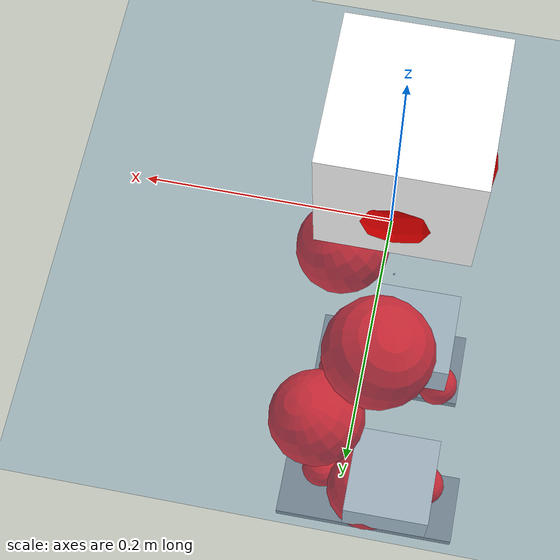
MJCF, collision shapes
<mujoco model="pi_12dof_release_v1">
  <compiler angle="radian" assetdir="assets" balanceinertia="true" inertiafromgeom="false"/>

  <option timestep="0.005" density="1.2" viscosity="2e-05"/>

  <size nkey="1"/>

  <visual>
    <quality shadowsize="8192"/>
    <map shadowclip="0.5"/>
  </visual>

  <default>
    <default class="/">
      <joint armature="0.01" damping="0.01" frictionloss="0.01"/>
      <geom contype="0" conaffinity="0" group="1" solref="-1000 -80"/>
      <site size="0.01 0.005 0.005" group="5"/>
      <general forcelimited="true" biastype="affine" gainprm="20" biasprm="0 -20 -0.5"/>
      <default class="foot">
        <geom size="0.0845 0.036 0.005" type="box" condim="6" group="4" priority="1" friction="0.9 0.2 0.2" solimp="0.015 1 0.005"/>
      </default>
      <default class="reward_collision_sphere">
        <geom group="5" rgba="1 0 0 1"/>
      </default>
    </default>
  </default>

  <asset>
    <texture type="skybox" colorspace="auto" name="//unnamed_texture_0" builtin="gradient" rgb1="0.95 0.95 0.95" rgb2="0.95 0.95 0.95" width="100" height="600"/>
    <texture type="2d" colorspace="auto" name="texplane" builtin="checker" rgb1="0.345 0.575 0.748" rgb2="0.345 0.575 0.748" markrgb="1 1 1" width="512" height="512"/>
    <material name="MatPlane" class="/" texture="texplane" texuniform="true" texrepeat="2 2" specular="0.9"/>
    <mesh name="baselink_1" class="/" file="baselink_1.STL"/>
    <mesh name="r_hip_pitch_link" class="/" file="r_hip_pitch_link.STL"/>
    <mesh name="r_hip_roll_link" class="/" file="r_hip_roll_link.STL"/>
    <mesh name="r_thigh_link" class="/" file="r_thigh_link.STL"/>
    <mesh name="r_calf_link" class="/" file="r_calf_link.STL"/>
    <mesh name="r_ankle_pitch_link" class="/" file="r_ankle_pitch_link.STL"/>
    <mesh name="r_ankle_roll_link" class="/" file="r_ankle_roll_link.STL"/>
    <mesh name="l_hip_pitch_link" class="/" file="l_hip_pitch_link.STL"/>
    <mesh name="l_hip_roll_link" class="/" file="l_hip_roll_link.STL"/>
    <mesh name="l_thigh_link" class="/" file="l_thigh_link.STL"/>
    <mesh name="l_calf_link" class="/" file="l_calf_link.STL"/>
    <mesh name="l_ankle_pitch_link" class="/" file="l_ankle_pitch_link.STL"/>
    <mesh name="l_ankle_roll_link" class="/" file="l_ankle_roll_link.STL"/>
  </asset>

  <worldbody>
    <geom name="floor" class="/" size="100 100 0.125" type="plane" group="0" material="MatPlane"/>
    <light name="toplight_shadow" class="/" pos="0 0 5" dir="0.0990148 0.0990148 -0.990148" type="directional" ambient="0.04 0.04 0.04" diffuse="0.55 0.55 0.55" specular="0.12 0.12 0.12"/>
    <light name="toplight_fill" class="/" pos="0 0 5" dir="0.0990148 0.0990148 -0.990148" type="directional" castshadow="false" ambient="0.04 0.04 0.04" diffuse="0.3 0.3 0.3" specular="0.08 0.08 0.08"/>
    <body name="trunk" pos="-0.00701481 -0.00183331 9.1574e-05" quat="0.999996 -0.00220072 0.00134604 0.00113003">
      <inertial pos="0.00845381 -0.000125079 0.0601674" quat="0.688489 0.00334005 0.0115555 0.725147" mass="3.92181" diaginertia="0.00492025 0.0168661 0.0371628"/>
      <joint name="//unnamed_joint_0" type="free"/>
      <geom name="//unnamed_geom_1" class="/" type="mesh" density="0" rgba="1 1 1 1" mesh="baselink_1"/>
      <geom name="//unnamed_geom_2" class="/" size="0.059117 0.059117 0.059117" pos="0 0 0.123487" type="box" rgba="1 1 1 1"/>
      <geom name="//unnamed_geom_3" class="reward_collision_sphere" size="0.0650287" pos="0 0 0.108051"/>
      <site name="imu" class="/" pos="-0.00995332 -0.00419436 -0.0260667" size="0.0118234"/>
      <camera name="track" class="/" pos="0 -2.26616 0" quat="0.707107 0.707107 0 0" mode="trackcom"/>
      <camera name="ego_camera" class="/" pos="0.065276 0 0.277846" quat="-0.5 -0.5 0.5 0.5"/>
      <body name="r_hip_pitch_link" pos="0.00160157 -0.0274696 -0.0503317" quat="0.992198 1.07279e-05 -0.124673 -1.50171e-05">
        <inertial pos="0.00319451 -0.059926 -0.00169267" quat="-0.0296077 0.707184 -0.0272772 0.705883" mass="0.628705" diaginertia="5.07279e-05 0.000186776 0.000726576"/>
        <joint name="r_hip_pitch_joint" class="/" pos="0 0 0" axis="0.000926497 -0.999999 -0.000412565" range="-1.74163 1.29213" armature="0.0109963" damping="0" frictionloss="0.0100797"/>
        <geom name="//unnamed_geom_4" class="/" type="mesh" density="0" rgba="0.75294 0.75294 0.75294 1" mesh="r_hip_pitch_link"/>
        <geom name="//unnamed_geom_5" class="/" size="0.00059117 0.00059117 0.00059117" type="box" rgba="0.75294 0.75294 0.75294 1"/>
        <body name="r_hip_roll_link" pos="-0.000160299 -0.0608038 -0.00105968" quat="0.999998 0.00077918 0.00183964 0.000910283">
          <inertial pos="-0.00406441 0.00214907 -0.0884883" quat="0.705753 -0.0798791 -0.0833424 0.69899" mass="0.651096" diaginertia="0.000172192 0.000550553 0.00105739"/>
          <joint name="r_hip_roll_joint" class="/" pos="0 0 0" axis="-0.99989 -0.0145221 0.00287176" stiffness="0.0118328" range="-0.153847 0.551186" armature="0.0114225" damping="0.033928" frictionloss="0.00940074"/>
          <geom name="//unnamed_geom_6" class="/" type="mesh" density="0" rgba="0.75294 0.75294 0.75294 1" mesh="r_hip_roll_link"/>
          <geom name="//unnamed_geom_7" class="/" size="0.00059117 0.00059117 0.00059117" type="box" rgba="0.75294 0.75294 0.75294 1"/>
          <geom name="//unnamed_geom_8" class="reward_collision_sphere" size="0.0472936"/>
          <body name="r_thigh_link" pos="0.00299157 0.00566838 -0.105499" quat="1 -0.000526799 -0.000609527 -0.000156801">
            <inertial pos="0.00397007 0.00166873 -0.0755564" quat="0.735488 0.677533 -0.00227986 -0.00121422" mass="0.184245" diaginertia="5.75927e-05 0.000156835 0.000469968"/>
            <joint name="r_thigh_joint" class="/" pos="0 0 0" axis="0.0024702 -0.00175756 -0.999995" stiffness="0.00519469" range="-0.229672 0.565783" armature="0.012468" damping="0.0140682" frictionloss="0.0160155"/>
            <geom name="//unnamed_geom_9" class="/" type="mesh" density="0" rgba="0.75294 0.75294 0.75294 1" mesh="r_thigh_link"/>
            <geom name="//unnamed_geom_10" class="/" size="0.00059117 0.00059117 0.00059117" type="box" rgba="0.75294 0.75294 0.75294 1"/>
            <body name="r_calf_link" pos="0.00310607 -0.00112618 -0.102658" quat="0.947511 7.31067e-05 0.31972 0.00162747">
              <inertial pos="-0.000974082 0.00353903 -0.107467" quat="0.999713 -0.0214691 0.00963094 0.00450932" mass="1.36467" diaginertia="0.00184924 0.00663922 0.00158562"/>
              <joint name="r_calf_joint" class="/" pos="0 0 0" axis="-0.021184 -0.99975 -0.00708715" stiffness="0.0221321" range="-1.78073 0.605159" armature="0.0104971" damping="0.020021" frictionloss="0.00994174"/>
              <geom name="//unnamed_geom_11" class="/" type="mesh" density="0" rgba="0.75294 0.75294 0.75294 1" mesh="r_calf_link"/>
              <geom name="//unnamed_geom_12" class="/" size="0.00059117 0.00059117 0.00059117" type="box" rgba="0.75294 0.75294 0.75294 1"/>
              <geom name="//unnamed_geom_13" class="reward_collision_sphere" size="0.0472936"/>
              <body name="r_ankle_pitch_link" pos="-0.0010789 0.00693679 -0.215345" quat="0.979995 -0.000427331 -0.199021 -0.000330686">
                <inertial pos="0.00311328 0.00717267 -0.00236531" quat="0.00156281 0.711169 -0.0100846 0.702947" mass="0.285585" diaginertia="0.000150062 0.000408323 0.000998674"/>
                <joint name="r_ankle_pitch_joint" class="/" pos="0 0 0" axis="-0.0227529 -0.999578 -0.0180482" range="-1.29613 0.515783" armature="0.0127907" damping="0.0175345" frictionloss="0.0111888"/>
                <geom name="//unnamed_geom_14" class="/" type="mesh" density="0" rgba="0.75294 0.75294 0.75294 1" mesh="r_ankle_pitch_link"/>
                <geom name="//unnamed_geom_15" class="/" size="0.0461112 0.0472936 0.0295585" type="box" rgba="0.75294 0.75294 0.75294 1"/>
                <body name="r_ankle_roll_link" pos="0.0669334 0.00696633 -0.00061096" quat="1 -1.64074e-05 -1.73498e-05 -9.71102e-05">
                  <inertial pos="-0.0200683 0.00216007 -0.0223423" quat="0.559209 0.41055 0.448619 0.563448" mass="0.843964" diaginertia="0.00056894 0.00193514 0.00257091"/>
                  <joint name="r_ankle_roll_joint" class="/" pos="0 0 0" axis="-0.999494 -0.0138919 -0.0286251" range="-0.0411873 0.191098" armature="0.00870313" damping="0" frictionloss="0.0119745"/>
                  <geom name="//unnamed_geom_16" class="/" type="mesh" density="0" rgba="0.75294 0.75294 0.75294 1" mesh="r_ankle_roll_link"/>
                  <geom name="//unnamed_geom_17" class="/" type="mesh" rgba="0.75294 0.75294 0.75294 1" mesh="r_ankle_roll_link"/>
                  <geom name="right_foot" class="foot" size="0.085434 0.0419123 0.00605324" pos="-0.0443877 0 -0.067918"/>
                  <geom name="//unnamed_geom_19" class="reward_collision_sphere" size="0.0472936" pos="-0.0435174 0 -0.0308718"/>
                  <geom name="//unnamed_geom_20" class="reward_collision_sphere" size="0.0236468" pos="0.0130552 0.0226616 -0.0617436"/>
                  <geom name="//unnamed_geom_21" class="reward_collision_sphere" size="0.0236468" pos="-0.104442 0.0226616 -0.0617436"/>
                  <site name="right_foot" class="foot" pos="-0.0443877 0 -0.067918" size="0.0118234"/>
                </body>
              </body>
            </body>
          </body>
        </body>
      </body>
      <body name="l_hip_pitch_link" pos="-0.00190258 0.0259951 -0.0478589" quat="0.992244 -0.00016617 -0.124303 0.000359112">
        <inertial pos="0.00159032 0.0554671 0.00256699" quat="-0.0247123 0.681405 0.032342 0.730774" mass="0.613057" diaginertia="6.75554e-05 0.000199751 0.000846637"/>
        <joint name="l_hip_pitch_joint" class="/" pos="0 0 0" axis="0.00575695 0.999416 0.0336866" range="-1.22275 1.73659" armature="0.0121059" damping="0.0097118" frictionloss="0.0113686"/>
        <geom name="//unnamed_geom_22" class="/" type="mesh" density="0" rgba="0.75294 0.75294 0.75294 1" mesh="l_hip_pitch_link"/>
        <geom name="//unnamed_geom_23" class="/" size="0.00059117 0.00059117 0.00059117" type="box" rgba="0.75294 0.75294 0.75294 1"/>
        <body name="l_hip_roll_link" pos="-0.000201364 0.0688792 -0.0049522" quat="0.999999 0.00051474 -0.000894509 -0.000503479">
          <inertial pos="-0.00208121 0.000295438 -0.0915543" quat="0.697726 -0.0723253 -0.0820217 0.707969" mass="0.605747" diaginertia="0.000173006 0.00054572 0.00112288"/>
          <joint name="l_hip_roll_joint" class="/" pos="0 0 0" axis="-0.999975 -0.000307227 0.00711631" stiffness="0.0367399" range="-0.548249 0.0446965" armature="0.0115172" damping="0.0036625" frictionloss="0.011146"/>
          <geom name="//unnamed_geom_24" class="/" type="mesh" density="0" rgba="0.75294 0.75294 0.75294 1" mesh="l_hip_roll_link"/>
          <geom name="//unnamed_geom_25" class="/" size="0.00059117 0.00059117 0.00059117" type="box" rgba="0.75294 0.75294 0.75294 1"/>
          <geom name="//unnamed_geom_26" class="reward_collision_sphere" size="0.0472936"/>
          <body name="l_thigh_link" pos="-0.00106972 -8.30991e-05 -0.101097" quat="0.999999 0.00087558 -0.000581661 7.11498e-05">
            <inertial pos="-0.000914955 -0.00794141 -0.0726643" quat="0.676147 0.73676 0.000986544 0.00294248" mass="0.189478" diaginertia="6.40778e-05 0.000183232 0.000559129"/>
            <joint name="l_thigh_joint" class="/" pos="0 0 0" axis="-0.00521174 -0.00292819 -0.999982" range="-0.57712 0.247783" armature="0.0115409" damping="0.0271913" frictionloss="0.0114611"/>
            <geom name="//unnamed_geom_27" class="/" type="mesh" density="0" rgba="0.75294 0.75294 0.75294 1" mesh="l_thigh_link"/>
            <geom name="//unnamed_geom_28" class="/" size="0.00059117 0.00059117 0.00059117" type="box" rgba="0.75294 0.75294 0.75294 1"/>
            <body name="l_calf_link" pos="8.97592e-05 0.000401382 -0.111279" quat="0.947481 -4.26593e-05 0.319799 0.002986">
              <inertial pos="-0.00613406 0.00123887 -0.101316" quat="0.999884 -0.0035786 -0.00469812 0.0140099" mass="1.33226" diaginertia="0.00173281 0.00638754 0.00147612"/>
              <joint name="l_calf_joint" class="/" pos="0 0 0" axis="0.00414059 0.999991 -0.000141282" range="-0.696788 1.67688" armature="0.0127253" damping="0.0127166" frictionloss="0.0143843"/>
              <geom name="//unnamed_geom_29" class="/" type="mesh" density="0" rgba="0.75294 0.75294 0.75294 1" mesh="l_calf_link"/>
              <geom name="//unnamed_geom_30" class="/" size="0.00059117 0.00059117 0.00059117" type="box" rgba="0.75294 0.75294 0.75294 1"/>
              <geom name="//unnamed_geom_31" class="reward_collision_sphere" size="0.0472936"/>
              <body name="l_ankle_pitch_link" pos="-0.000789736 -0.000728011 -0.209592" quat="0.979999 2.54774e-05 -0.199002 0.000152762">
                <inertial pos="0.00163639 -0.00160036 0.000305048" quat="-0.00223016 0.707116 0.00222424 0.707091" mass="0.307956" diaginertia="0.00014966 0.000405461 0.00104395"/>
                <joint name="l_ankle_pitch_joint" class="/" pos="0 0 0" axis="-0.00407 0.999985 -0.00375573" stiffness="0.00385462" range="-0.509217 1.35469" armature="0.011938" damping="0" frictionloss="0.011958"/>
                <geom name="//unnamed_geom_32" class="/" type="mesh" density="0" rgba="0.75294 0.75294 0.75294 1" mesh="l_ankle_pitch_link"/>
                <geom name="//unnamed_geom_33" class="/" size="0.0461112 0.0472936 0.0295585" type="box" rgba="0.75294 0.75294 0.75294 1"/>
                <body name="l_ankle_roll_link" pos="0.0670162 0.0020067 -0.00119766" quat="0.999999 0.000240758 -0.000901645 -0.000796728">
                  <inertial pos="-0.0181232 0.00141229 -0.0233621" quat="0.556886 0.430321 0.436299 0.560665" mass="0.845519" diaginertia="0.000576868 0.00196282 0.00238357"/>
                  <joint name="l_ankle_roll_joint" class="/" pos="0 0 0" axis="-0.999532 -0.0100165 -0.0289048" stiffness="0.022278" range="-0.139203 0.155363" armature="0.0110118" damping="0" frictionloss="0.0114516"/>
                  <geom name="//unnamed_geom_34" class="/" type="mesh" density="0" rgba="0.75294 0.75294 0.75294 1" mesh="l_ankle_roll_link"/>
                  <geom name="//unnamed_geom_35" class="/" type="mesh" rgba="0.75294 0.75294 0.75294 1" mesh="l_ankle_roll_link"/>
                  <geom name="left_foot" class="foot" size="0.100514 0.037589 0.00686671" pos="-0.0443877 0 -0.067918"/>
                  <geom name="//unnamed_geom_37" class="reward_collision_sphere" size="0.0472936" pos="-0.0435174 0 -0.0308718"/>
                  <geom name="//unnamed_geom_38" class="reward_collision_sphere" size="0.0236468" pos="0.0130552 -0.0226616 -0.0617436"/>
                  <geom name="//unnamed_geom_39" class="reward_collision_sphere" size="0.0236468" pos="-0.104442 -0.0226616 -0.0617436"/>
                  <site name="left_foot" class="foot" pos="-0.0443877 0 -0.067918" size="0.0118234"/>
                </body>
              </body>
            </body>
          </body>
        </body>
      </body>
    </body>
  </worldbody>

  <contact>
    <pair class="/" geom1="floor" geom2="right_foot" name="//unnamed_contact_1"/>
    <pair class="/" geom1="floor" geom2="left_foot" name="//unnamed_contact_0"/>
  </contact>

  <actuator>
    <general name="r_hip_pitch_joint" class="/" joint="r_hip_pitch_joint" forcerange="-24.5294 24.5294" gainprm="24.4541" biasprm="0 -24.4541 -0.602011"/>
    <general name="r_hip_roll_joint" class="/" joint="r_hip_roll_joint" forcerange="-23.5048 23.5048" gainprm="24.4541" biasprm="0 -24.4541 -0.602011"/>
    <general name="r_thigh_joint" class="/" joint="r_thigh_joint" forcerange="-22.8287 22.8287" gainprm="24.4541" biasprm="0 -24.4541 -0.602011"/>
    <general name="r_calf_joint" class="/" joint="r_calf_joint" forcerange="-18.5443 18.5443" gainprm="24.4541" biasprm="0 -24.4541 -0.602011"/>
    <general name="r_ankle_pitch_joint" class="/" joint="r_ankle_pitch_joint" forcerange="-26.8975 26.8975" gainprm="24.4541" biasprm="0 -24.4541 -0.602011"/>
    <general name="r_ankle_roll_joint" class="/" joint="r_ankle_roll_joint" forcerange="-29.6905 29.6905" gainprm="24.4541" biasprm="0 -24.4541 -0.602011"/>
    <general name="l_hip_pitch_joint" class="/" joint="l_hip_pitch_joint" forcerange="-24.5354 24.5354" gainprm="24.4541" biasprm="0 -24.4541 -0.602011"/>
    <general name="l_hip_roll_joint" class="/" joint="l_hip_roll_joint" forcerange="-25.4939 25.4939" gainprm="24.4541" biasprm="0 -24.4541 -0.602011"/>
    <general name="l_thigh_joint" class="/" joint="l_thigh_joint" forcerange="-22.6999 22.6999" gainprm="24.4541" biasprm="0 -24.4541 -0.602011"/>
    <general name="l_calf_joint" class="/" joint="l_calf_joint" forcerange="-23.8156 23.8156" gainprm="24.4541" biasprm="0 -24.4541 -0.602011"/>
    <general name="l_ankle_pitch_joint" class="/" joint="l_ankle_pitch_joint" forcerange="-24.2564 24.2564" gainprm="24.4541" biasprm="0 -24.4541 -0.602011"/>
    <general name="l_ankle_roll_joint" class="/" joint="l_ankle_roll_joint" forcerange="-24.9044 24.9044" gainprm="24.4541" biasprm="0 -24.4541 -0.602011"/>
  </actuator>

  <sensor>
    <gyro site="imu" name="imu_angular_velocity"/>
    <velocimeter site="imu" name="imu_linear_velocity"/>
    <framelinvel objtype="site" objname="left_foot" name="left_foot_global_linear_velocity"/>
    <framelinvel objtype="site" objname="right_foot" name="right_foot_global_linear_velocity"/>
  </sensor>

  <keyframe>
    <key name="home" qpos="0 0 0.291 1 0 0 0 0.4 0 0 -0.8 0.4 0 -0.4 0 0 0.8 -0.4 0"/>
  </keyframe>
</mujoco>
